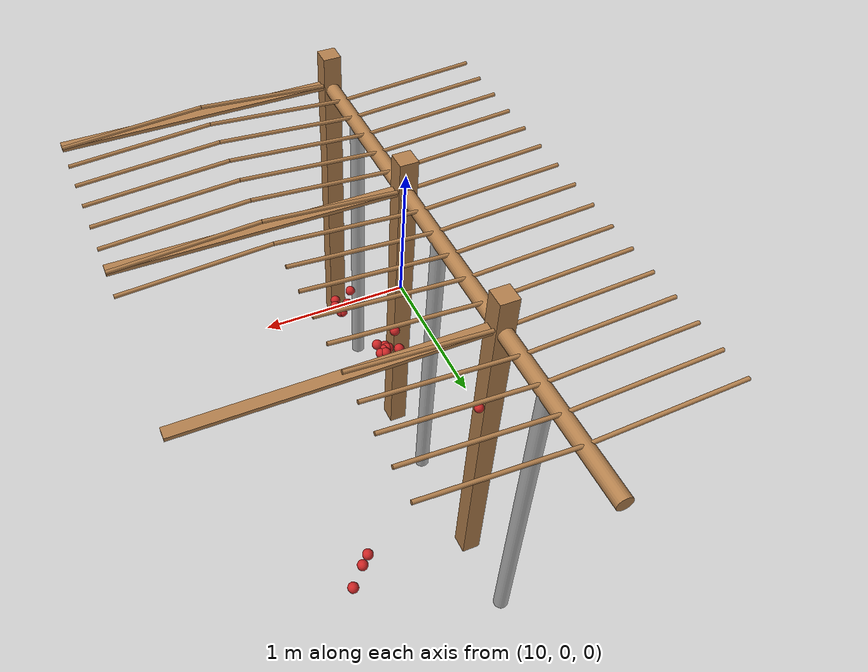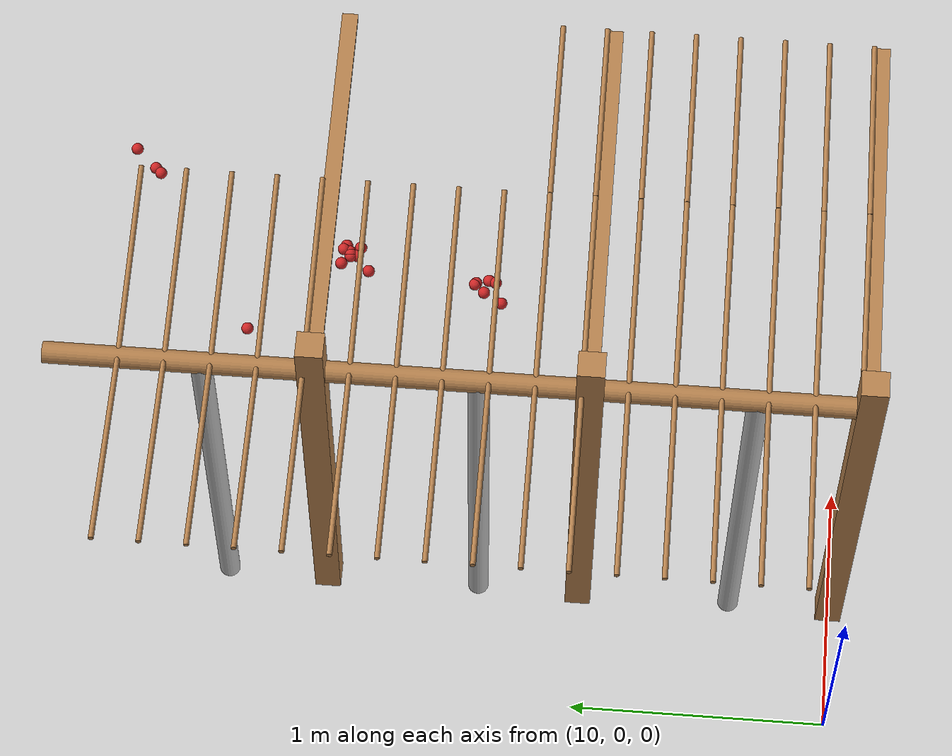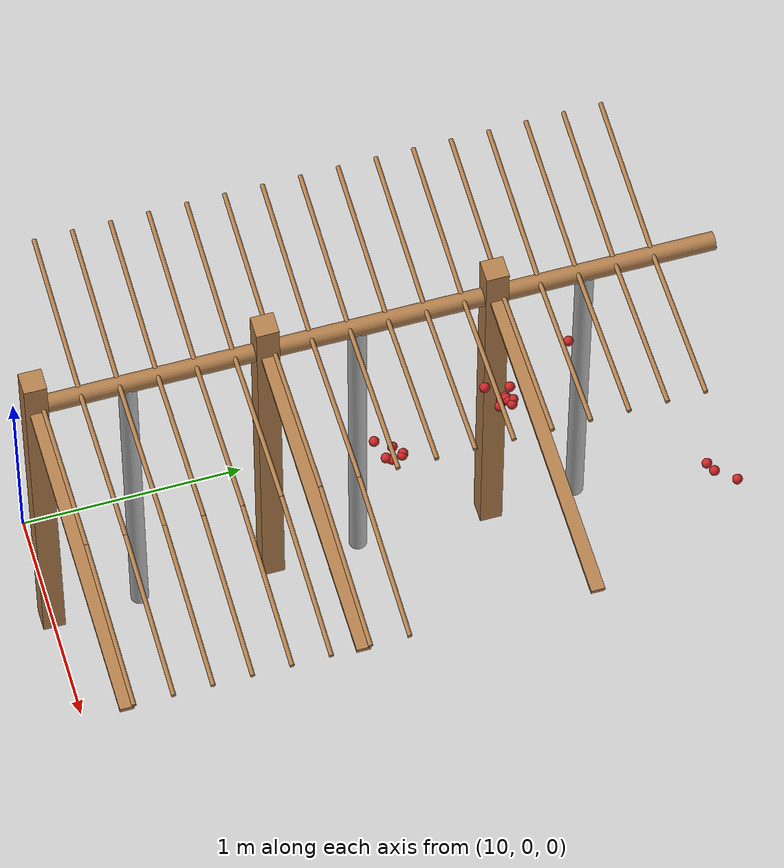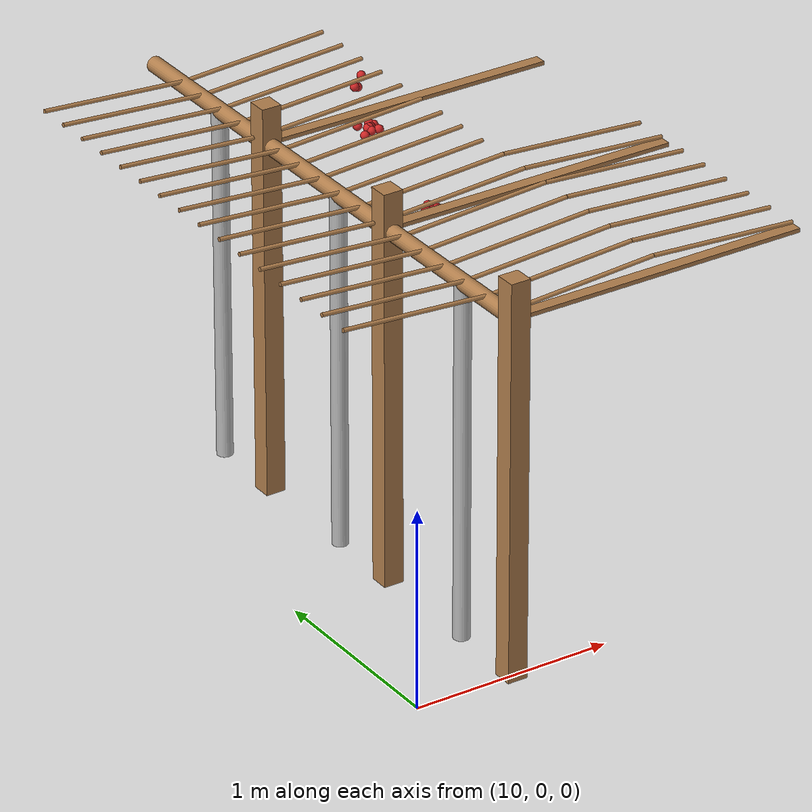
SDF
<sdf version="1.4">
 <model name="pergola">
  <include><name>post_77</name><pose>10.5 0.0 0 0 0 0</pose><uri>model://post</uri></include>
  <include><name>post_78</name><pose>10.5 1.0 0 0 0 0</pose><uri>model://post</uri></include>
  <include><name>post_79</name><pose>10.5 2.0 0 0 0 0</pose><uri>model://post</uri></include>
  <link name="beam_77">
   <pose>11.25 0.0 1.81 0 0 0</pose>
   <collision name="collision"><geometry><box><size>1.5 0.06 0.02</size></box></geometry></collision>
   <visual name="visual">
    <geometry><box><size>1.5 0.06 0.02</size></box></geometry>
    <material><script><name>Gazebo/Wood</name></script></material>
   </visual>
   <inertial>
    <mass>5</mass>
    <inertia>
     <ixx>0.0016666666666666668</ixx>
     <ixy>0.0</ixy>
     <ixz>0.0</ixz>
     <iyy>0.9390000000000001</iyy>
     <iyz>0.0</iyz>
     <izz>0.9376666666666665</izz>
    </inertia>
   </inertial>
  </link>
  <link name="beam_78">
   <pose>11.25 1.0 1.81 0 0 0</pose>
   <collision name="collision"><geometry><box><size>1.5 0.06 0.02</size></box></geometry></collision>
   <visual name="visual">
    <geometry><box><size>1.5 0.06 0.02</size></box></geometry>
    <material><script><name>Gazebo/Wood</name></script></material>
   </visual>
   <inertial>
    <mass>5</mass>
    <inertia>
     <ixx>0.0016666666666666668</ixx>
     <ixy>0.0</ixy>
     <ixz>0.0</ixz>
     <iyy>0.9390000000000001</iyy>
     <iyz>0.0</iyz>
     <izz>0.9376666666666665</izz>
    </inertia>
   </inertial>
  </link>
  <link name="beam_79">
   <pose>11.25 2.0 1.81 0 0 0</pose>
   <collision name="collision"><geometry><box><size>1.5 0.06 0.02</size></box></geometry></collision>
   <visual name="visual">
    <geometry><box><size>1.5 0.06 0.02</size></box></geometry>
    <material><script><name>Gazebo/Wood</name></script></material>
   </visual>
   <inertial>
    <mass>5</mass>
    <inertia>
     <ixx>0.0016666666666666668</ixx>
     <ixy>0.0</ixy>
     <ixz>0.0</ixz>
     <iyy>0.9390000000000001</iyy>
     <iyz>0.0</iyz>
     <izz>0.9376666666666665</izz>
    </inertia>
   </inertial>
  </link>
  <include><name>tree_70</name><pose>10.5 0.4 0 0 0 0</pose><uri>model://tree_trunk</uri></include>
  <include><name>tree_71</name><pose>10.5 1.4 0 0 0 0</pose><uri>model://tree_trunk</uri></include>
  <include><name>tree_72</name><pose>10.5 2.4 0 0 0 0</pose><uri>model://tree_trunk</uri></include>
  <link name="baseBranch_70">
   <pose>10.5 0.5 1.8 1.5707963267948966 0 0</pose>
   <collision name="collision">
    <geometry><cylinder><radius>0.04</radius><length>0.94</length></cylinder></geometry>
   </collision>
   <visual name="visual">
    <geometry><cylinder><radius>0.04</radius><length>0.94</length></cylinder></geometry>
    <material><script><name>Gazebo/WoodFloor</name></script></material>
   </visual>
   <inertial>
    <mass>10</mass>
    <inertia>
     <ixx>0.7403333333333334</ixx>
     <ixy>0.0</ixy>
     <ixz>0.0</ixz>
     <iyy>0.7403333333333334</iyy>
     <iyz>0.0</iyz>
     <izz>0.008</izz>
    </inertia>
   </inertial>
  </link>
  <link name="baseBranch_71">
   <pose>10.5 1.5 1.8 1.5707963267948966 0 0</pose>
   <collision name="collision">
    <geometry><cylinder><radius>0.04</radius><length>0.94</length></cylinder></geometry>
   </collision>
   <visual name="visual">
    <geometry><cylinder><radius>0.04</radius><length>0.94</length></cylinder></geometry>
    <material><script><name>Gazebo/WoodFloor</name></script></material>
   </visual>
   <inertial>
    <mass>10</mass>
    <inertia>
     <ixx>0.7403333333333334</ixx>
     <ixy>0.0</ixy>
     <ixz>0.0</ixz>
     <iyy>0.7403333333333334</iyy>
     <iyz>0.0</iyz>
     <izz>0.008</izz>
    </inertia>
   </inertial>
  </link>
  <link name="baseBranch_72">
   <pose>10.5 2.5 1.8 1.5707963267948966 0 0</pose>
   <collision name="collision">
    <geometry><cylinder><radius>0.04</radius><length>0.94</length></cylinder></geometry>
   </collision>
   <visual name="visual">
    <geometry><cylinder><radius>0.04</radius><length>0.94</length></cylinder></geometry>
    <material><script><name>Gazebo/WoodFloor</name></script></material>
   </visual>
   <inertial>
    <mass>10</mass>
    <inertia>
     <ixx>0.7403333333333334</ixx>
     <ixy>0.0</ixy>
     <ixz>0.0</ixz>
     <iyy>0.7403333333333334</iyy>
     <iyz>0.0</iyz>
     <izz>0.008</izz>
    </inertia>
   </inertial>
  </link>
  <link name="vine_723">
   <pose>10.125 0.19666666666666666 1.85 0 -1.5042281630190728 0</pose>
   <collision name="collision">
    <geometry><cylinder><radius>0.01</radius><length>0.7516648189186453</length></cylinder></geometry>
   </collision>
   <visual name="visual">
    <geometry><cylinder><radius>0.01</radius><length>0.7516648189186453</length></cylinder></geometry>
    <material><script><name>Gazebo/WoodFloor</name></script></material>
   </visual>
   <inertial>
    <mass>5</mass>
    <inertia>
     <ixx>0.23554166666666657</ixx>
     <ixy>0.0</ixy>
     <ixz>0.0</ixz>
     <iyy>0.23554166666666657</iyy>
     <iyz>0.0</iyz>
     <izz>0.00025</izz>
    </inertia>
   </inertial>
  </link>
  <link name="vine_725">
   <pose>10.125 0.3633333333333333 1.85 0 -1.5042281630190728 0</pose>
   <collision name="collision">
    <geometry><cylinder><radius>0.01</radius><length>0.7516648189186453</length></cylinder></geometry>
   </collision>
   <visual name="visual">
    <geometry><cylinder><radius>0.01</radius><length>0.7516648189186453</length></cylinder></geometry>
    <material><script><name>Gazebo/WoodFloor</name></script></material>
   </visual>
   <inertial>
    <mass>5</mass>
    <inertia>
     <ixx>0.23554166666666657</ixx>
     <ixy>0.0</ixy>
     <ixz>0.0</ixz>
     <iyy>0.23554166666666657</iyy>
     <iyz>0.0</iyz>
     <izz>0.00025</izz>
    </inertia>
   </inertial>
  </link>
  <link name="vine_727">
   <pose>10.125 0.53 1.85 0 -1.5042281630190728 0</pose>
   <collision name="collision">
    <geometry><cylinder><radius>0.01</radius><length>0.7516648189186453</length></cylinder></geometry>
   </collision>
   <visual name="visual">
    <geometry><cylinder><radius>0.01</radius><length>0.7516648189186453</length></cylinder></geometry>
    <material><script><name>Gazebo/WoodFloor</name></script></material>
   </visual>
   <inertial>
    <mass>5</mass>
    <inertia>
     <ixx>0.23554166666666657</ixx>
     <ixy>0.0</ixy>
     <ixz>0.0</ixz>
     <iyy>0.23554166666666657</iyy>
     <iyz>0.0</iyz>
     <izz>0.00025</izz>
    </inertia>
   </inertial>
  </link>
  <link name="vine_729">
   <pose>10.125 0.6966666666666667 1.85 0 -1.5042281630190728 0</pose>
   <collision name="collision">
    <geometry><cylinder><radius>0.01</radius><length>0.7516648189186453</length></cylinder></geometry>
   </collision>
   <visual name="visual">
    <geometry><cylinder><radius>0.01</radius><length>0.7516648189186453</length></cylinder></geometry>
    <material><script><name>Gazebo/WoodFloor</name></script></material>
   </visual>
   <inertial>
    <mass>5</mass>
    <inertia>
     <ixx>0.23554166666666657</ixx>
     <ixy>0.0</ixy>
     <ixz>0.0</ixz>
     <iyy>0.23554166666666657</iyy>
     <iyz>0.0</iyz>
     <izz>0.00025</izz>
    </inertia>
   </inertial>
  </link>
  <link name="vine_731">
   <pose>10.125 0.8633333333333333 1.85 0 -1.5042281630190728 0</pose>
   <collision name="collision">
    <geometry><cylinder><radius>0.01</radius><length>0.7516648189186453</length></cylinder></geometry>
   </collision>
   <visual name="visual">
    <geometry><cylinder><radius>0.01</radius><length>0.7516648189186453</length></cylinder></geometry>
    <material><script><name>Gazebo/WoodFloor</name></script></material>
   </visual>
   <inertial>
    <mass>5</mass>
    <inertia>
     <ixx>0.23554166666666657</ixx>
     <ixy>0.0</ixy>
     <ixz>0.0</ixz>
     <iyy>0.23554166666666657</iyy>
     <iyz>0.0</iyz>
     <izz>0.00025</izz>
    </inertia>
   </inertial>
  </link>
  <link name="vine_733">
   <pose>10.125 1.03 1.85 0 -1.5042281630190728 0</pose>
   <collision name="collision">
    <geometry><cylinder><radius>0.01</radius><length>0.7516648189186453</length></cylinder></geometry>
   </collision>
   <visual name="visual">
    <geometry><cylinder><radius>0.01</radius><length>0.7516648189186453</length></cylinder></geometry>
    <material><script><name>Gazebo/WoodFloor</name></script></material>
   </visual>
   <inertial>
    <mass>5</mass>
    <inertia>
     <ixx>0.23554166666666657</ixx>
     <ixy>0.0</ixy>
     <ixz>0.0</ixz>
     <iyy>0.23554166666666657</iyy>
     <iyz>0.0</iyz>
     <izz>0.00025</izz>
    </inertia>
   </inertial>
  </link>
  <link name="vine_735">
   <pose>10.125 1.1966666666666665 1.85 0 -1.5042281630190728 0</pose>
   <collision name="collision">
    <geometry><cylinder><radius>0.01</radius><length>0.7516648189186453</length></cylinder></geometry>
   </collision>
   <visual name="visual">
    <geometry><cylinder><radius>0.01</radius><length>0.7516648189186453</length></cylinder></geometry>
    <material><script><name>Gazebo/WoodFloor</name></script></material>
   </visual>
   <inertial>
    <mass>5</mass>
    <inertia>
     <ixx>0.23554166666666657</ixx>
     <ixy>0.0</ixy>
     <ixz>0.0</ixz>
     <iyy>0.23554166666666657</iyy>
     <iyz>0.0</iyz>
     <izz>0.00025</izz>
    </inertia>
   </inertial>
  </link>
  <link name="vine_737">
   <pose>10.125 1.3633333333333333 1.85 0 -1.5042281630190728 0</pose>
   <collision name="collision">
    <geometry><cylinder><radius>0.01</radius><length>0.7516648189186453</length></cylinder></geometry>
   </collision>
   <visual name="visual">
    <geometry><cylinder><radius>0.01</radius><length>0.7516648189186453</length></cylinder></geometry>
    <material><script><name>Gazebo/WoodFloor</name></script></material>
   </visual>
   <inertial>
    <mass>5</mass>
    <inertia>
     <ixx>0.23554166666666657</ixx>
     <ixy>0.0</ixy>
     <ixz>0.0</ixz>
     <iyy>0.23554166666666657</iyy>
     <iyz>0.0</iyz>
     <izz>0.00025</izz>
    </inertia>
   </inertial>
  </link>
  <link name="vine_739">
   <pose>10.125 1.53 1.85 0 -1.5042281630190728 0</pose>
   <collision name="collision">
    <geometry><cylinder><radius>0.01</radius><length>0.7516648189186453</length></cylinder></geometry>
   </collision>
   <visual name="visual">
    <geometry><cylinder><radius>0.01</radius><length>0.7516648189186453</length></cylinder></geometry>
    <material><script><name>Gazebo/WoodFloor</name></script></material>
   </visual>
   <inertial>
    <mass>5</mass>
    <inertia>
     <ixx>0.23554166666666657</ixx>
     <ixy>0.0</ixy>
     <ixz>0.0</ixz>
     <iyy>0.23554166666666657</iyy>
     <iyz>0.0</iyz>
     <izz>0.00025</izz>
    </inertia>
   </inertial>
  </link>
  <link name="vine_741">
   <pose>10.125 1.6966666666666665 1.85 0 -1.5042281630190728 0</pose>
   <collision name="collision">
    <geometry><cylinder><radius>0.01</radius><length>0.7516648189186453</length></cylinder></geometry>
   </collision>
   <visual name="visual">
    <geometry><cylinder><radius>0.01</radius><length>0.7516648189186453</length></cylinder></geometry>
    <material><script><name>Gazebo/WoodFloor</name></script></material>
   </visual>
   <inertial>
    <mass>5</mass>
    <inertia>
     <ixx>0.23554166666666657</ixx>
     <ixy>0.0</ixy>
     <ixz>0.0</ixz>
     <iyy>0.23554166666666657</iyy>
     <iyz>0.0</iyz>
     <izz>0.00025</izz>
    </inertia>
   </inertial>
  </link>
  <link name="vine_743">
   <pose>10.125 1.8633333333333333 1.85 0 -1.5042281630190728 0</pose>
   <collision name="collision">
    <geometry><cylinder><radius>0.01</radius><length>0.7516648189186453</length></cylinder></geometry>
   </collision>
   <visual name="visual">
    <geometry><cylinder><radius>0.01</radius><length>0.7516648189186453</length></cylinder></geometry>
    <material><script><name>Gazebo/WoodFloor</name></script></material>
   </visual>
   <inertial>
    <mass>5</mass>
    <inertia>
     <ixx>0.23554166666666657</ixx>
     <ixy>0.0</ixy>
     <ixz>0.0</ixz>
     <iyy>0.23554166666666657</iyy>
     <iyz>0.0</iyz>
     <izz>0.00025</izz>
    </inertia>
   </inertial>
  </link>
  <link name="vine_745">
   <pose>10.125 2.03 1.85 0 -1.5042281630190728 0</pose>
   <collision name="collision">
    <geometry><cylinder><radius>0.01</radius><length>0.7516648189186453</length></cylinder></geometry>
   </collision>
   <visual name="visual">
    <geometry><cylinder><radius>0.01</radius><length>0.7516648189186453</length></cylinder></geometry>
    <material><script><name>Gazebo/WoodFloor</name></script></material>
   </visual>
   <inertial>
    <mass>5</mass>
    <inertia>
     <ixx>0.23554166666666657</ixx>
     <ixy>0.0</ixy>
     <ixz>0.0</ixz>
     <iyy>0.23554166666666657</iyy>
     <iyz>0.0</iyz>
     <izz>0.00025</izz>
    </inertia>
   </inertial>
  </link>
  <link name="vine_747">
   <pose>10.125 2.1966666666666663 1.85 0 -1.5042281630190728 0</pose>
   <collision name="collision">
    <geometry><cylinder><radius>0.01</radius><length>0.7516648189186453</length></cylinder></geometry>
   </collision>
   <visual name="visual">
    <geometry><cylinder><radius>0.01</radius><length>0.7516648189186453</length></cylinder></geometry>
    <material><script><name>Gazebo/WoodFloor</name></script></material>
   </visual>
   <inertial>
    <mass>5</mass>
    <inertia>
     <ixx>0.23554166666666657</ixx>
     <ixy>0.0</ixy>
     <ixz>0.0</ixz>
     <iyy>0.23554166666666657</iyy>
     <iyz>0.0</iyz>
     <izz>0.00025</izz>
    </inertia>
   </inertial>
  </link>
  <link name="vine_749">
   <pose>10.125 2.363333333333333 1.85 0 -1.5042281630190728 0</pose>
   <collision name="collision">
    <geometry><cylinder><radius>0.01</radius><length>0.7516648189186453</length></cylinder></geometry>
   </collision>
   <visual name="visual">
    <geometry><cylinder><radius>0.01</radius><length>0.7516648189186453</length></cylinder></geometry>
    <material><script><name>Gazebo/WoodFloor</name></script></material>
   </visual>
   <inertial>
    <mass>5</mass>
    <inertia>
     <ixx>0.23554166666666657</ixx>
     <ixy>0.0</ixy>
     <ixz>0.0</ixz>
     <iyy>0.23554166666666657</iyy>
     <iyz>0.0</iyz>
     <izz>0.00025</izz>
    </inertia>
   </inertial>
  </link>
  <link name="vine_751">
   <pose>10.125 2.53 1.85 0 -1.5042281630190728 0</pose>
   <collision name="collision">
    <geometry><cylinder><radius>0.01</radius><length>0.7516648189186453</length></cylinder></geometry>
   </collision>
   <visual name="visual">
    <geometry><cylinder><radius>0.01</radius><length>0.7516648189186453</length></cylinder></geometry>
    <material><script><name>Gazebo/WoodFloor</name></script></material>
   </visual>
   <inertial>
    <mass>5</mass>
    <inertia>
     <ixx>0.23554166666666657</ixx>
     <ixy>0.0</ixy>
     <ixz>0.0</ixz>
     <iyy>0.23554166666666657</iyy>
     <iyz>0.0</iyz>
     <izz>0.00025</izz>
    </inertia>
   </inertial>
  </link>
  <link name="vine_753">
   <pose>10.125 2.6966666666666663 1.85 0 -1.5042281630190728 0</pose>
   <collision name="collision">
    <geometry><cylinder><radius>0.01</radius><length>0.7516648189186453</length></cylinder></geometry>
   </collision>
   <visual name="visual">
    <geometry><cylinder><radius>0.01</radius><length>0.7516648189186453</length></cylinder></geometry>
    <material><script><name>Gazebo/WoodFloor</name></script></material>
   </visual>
   <inertial>
    <mass>5</mass>
    <inertia>
     <ixx>0.23554166666666657</ixx>
     <ixy>0.0</ixy>
     <ixz>0.0</ixz>
     <iyy>0.23554166666666657</iyy>
     <iyz>0.0</iyz>
     <izz>0.00025</izz>
    </inertia>
   </inertial>
  </link>
  <link name="vine_840">
   <pose>10.875 0.03 1.85 0 1.5042281630190728 0</pose>
   <collision name="collision">
    <geometry><cylinder><radius>0.01</radius><length>0.7516648189186453</length></cylinder></geometry>
   </collision>
   <visual name="visual">
    <geometry><cylinder><radius>0.01</radius><length>0.7516648189186453</length></cylinder></geometry>
    <material><script><name>Gazebo/WoodFloor</name></script></material>
   </visual>
   <inertial>
    <mass>5</mass>
    <inertia>
     <ixx>0.23554166666666657</ixx>
     <ixy>0.0</ixy>
     <ixz>0.0</ixz>
     <iyy>0.23554166666666657</iyy>
     <iyz>0.0</iyz>
     <izz>0.00025</izz>
    </inertia>
   </inertial>
  </link>
  <link name="vine_841">
   <pose>11.625 0.03 1.85 0 -1.5042281630190728 0</pose>
   <collision name="collision">
    <geometry><cylinder><radius>0.01</radius><length>0.7516648189186453</length></cylinder></geometry>
   </collision>
   <visual name="visual">
    <geometry><cylinder><radius>0.01</radius><length>0.7516648189186453</length></cylinder></geometry>
    <material><script><name>Gazebo/WoodFloor</name></script></material>
   </visual>
   <inertial>
    <mass>5</mass>
    <inertia>
     <ixx>0.23554166666666657</ixx>
     <ixy>0.0</ixy>
     <ixz>0.0</ixz>
     <iyy>0.23554166666666657</iyy>
     <iyz>0.0</iyz>
     <izz>0.00025</izz>
    </inertia>
   </inertial>
  </link>
  <link name="vine_842">
   <pose>10.875 0.19666666666666666 1.85 0 1.5042281630190728 0</pose>
   <collision name="collision">
    <geometry><cylinder><radius>0.01</radius><length>0.7516648189186453</length></cylinder></geometry>
   </collision>
   <visual name="visual">
    <geometry><cylinder><radius>0.01</radius><length>0.7516648189186453</length></cylinder></geometry>
    <material><script><name>Gazebo/WoodFloor</name></script></material>
   </visual>
   <inertial>
    <mass>5</mass>
    <inertia>
     <ixx>0.23554166666666657</ixx>
     <ixy>0.0</ixy>
     <ixz>0.0</ixz>
     <iyy>0.23554166666666657</iyy>
     <iyz>0.0</iyz>
     <izz>0.00025</izz>
    </inertia>
   </inertial>
  </link>
  <link name="vine_843">
   <pose>11.625 0.19666666666666666 1.85 0 -1.5042281630190728 0</pose>
   <collision name="collision">
    <geometry><cylinder><radius>0.01</radius><length>0.7516648189186453</length></cylinder></geometry>
   </collision>
   <visual name="visual">
    <geometry><cylinder><radius>0.01</radius><length>0.7516648189186453</length></cylinder></geometry>
    <material><script><name>Gazebo/WoodFloor</name></script></material>
   </visual>
   <inertial>
    <mass>5</mass>
    <inertia>
     <ixx>0.23554166666666657</ixx>
     <ixy>0.0</ixy>
     <ixz>0.0</ixz>
     <iyy>0.23554166666666657</iyy>
     <iyz>0.0</iyz>
     <izz>0.00025</izz>
    </inertia>
   </inertial>
  </link>
  <link name="vine_844">
   <pose>10.875 0.3633333333333333 1.85 0 1.5042281630190728 0</pose>
   <collision name="collision">
    <geometry><cylinder><radius>0.01</radius><length>0.7516648189186453</length></cylinder></geometry>
   </collision>
   <visual name="visual">
    <geometry><cylinder><radius>0.01</radius><length>0.7516648189186453</length></cylinder></geometry>
    <material><script><name>Gazebo/WoodFloor</name></script></material>
   </visual>
   <inertial>
    <mass>5</mass>
    <inertia>
     <ixx>0.23554166666666657</ixx>
     <ixy>0.0</ixy>
     <ixz>0.0</ixz>
     <iyy>0.23554166666666657</iyy>
     <iyz>0.0</iyz>
     <izz>0.00025</izz>
    </inertia>
   </inertial>
  </link>
  <link name="vine_845">
   <pose>11.625 0.3633333333333333 1.85 0 -1.5042281630190728 0</pose>
   <collision name="collision">
    <geometry><cylinder><radius>0.01</radius><length>0.7516648189186453</length></cylinder></geometry>
   </collision>
   <visual name="visual">
    <geometry><cylinder><radius>0.01</radius><length>0.7516648189186453</length></cylinder></geometry>
    <material><script><name>Gazebo/WoodFloor</name></script></material>
   </visual>
   <inertial>
    <mass>5</mass>
    <inertia>
     <ixx>0.23554166666666657</ixx>
     <ixy>0.0</ixy>
     <ixz>0.0</ixz>
     <iyy>0.23554166666666657</iyy>
     <iyz>0.0</iyz>
     <izz>0.00025</izz>
    </inertia>
   </inertial>
  </link>
  <link name="vine_846">
   <pose>10.875 0.53 1.85 0 1.5042281630190728 0</pose>
   <collision name="collision">
    <geometry><cylinder><radius>0.01</radius><length>0.7516648189186453</length></cylinder></geometry>
   </collision>
   <visual name="visual">
    <geometry><cylinder><radius>0.01</radius><length>0.7516648189186453</length></cylinder></geometry>
    <material><script><name>Gazebo/WoodFloor</name></script></material>
   </visual>
   <inertial>
    <mass>5</mass>
    <inertia>
     <ixx>0.23554166666666657</ixx>
     <ixy>0.0</ixy>
     <ixz>0.0</ixz>
     <iyy>0.23554166666666657</iyy>
     <iyz>0.0</iyz>
     <izz>0.00025</izz>
    </inertia>
   </inertial>
  </link>
  <link name="vine_847">
   <pose>11.625 0.53 1.85 0 -1.5042281630190728 0</pose>
   <collision name="collision">
    <geometry><cylinder><radius>0.01</radius><length>0.7516648189186453</length></cylinder></geometry>
   </collision>
   <visual name="visual">
    <geometry><cylinder><radius>0.01</radius><length>0.7516648189186453</length></cylinder></geometry>
    <material><script><name>Gazebo/WoodFloor</name></script></material>
   </visual>
   <inertial>
    <mass>5</mass>
    <inertia>
     <ixx>0.23554166666666657</ixx>
     <ixy>0.0</ixy>
     <ixz>0.0</ixz>
     <iyy>0.23554166666666657</iyy>
     <iyz>0.0</iyz>
     <izz>0.00025</izz>
    </inertia>
   </inertial>
  </link>
  <link name="vine_848">
   <pose>10.875 0.6966666666666667 1.85 0 1.5042281630190728 0</pose>
   <collision name="collision">
    <geometry><cylinder><radius>0.01</radius><length>0.7516648189186453</length></cylinder></geometry>
   </collision>
   <visual name="visual">
    <geometry><cylinder><radius>0.01</radius><length>0.7516648189186453</length></cylinder></geometry>
    <material><script><name>Gazebo/WoodFloor</name></script></material>
   </visual>
   <inertial>
    <mass>5</mass>
    <inertia>
     <ixx>0.23554166666666657</ixx>
     <ixy>0.0</ixy>
     <ixz>0.0</ixz>
     <iyy>0.23554166666666657</iyy>
     <iyz>0.0</iyz>
     <izz>0.00025</izz>
    </inertia>
   </inertial>
  </link>
  <link name="vine_849">
   <pose>11.625 0.6966666666666667 1.85 0 -1.5042281630190728 0</pose>
   <collision name="collision">
    <geometry><cylinder><radius>0.01</radius><length>0.7516648189186453</length></cylinder></geometry>
   </collision>
   <visual name="visual">
    <geometry><cylinder><radius>0.01</radius><length>0.7516648189186453</length></cylinder></geometry>
    <material><script><name>Gazebo/WoodFloor</name></script></material>
   </visual>
   <inertial>
    <mass>5</mass>
    <inertia>
     <ixx>0.23554166666666657</ixx>
     <ixy>0.0</ixy>
     <ixz>0.0</ixz>
     <iyy>0.23554166666666657</iyy>
     <iyz>0.0</iyz>
     <izz>0.00025</izz>
    </inertia>
   </inertial>
  </link>
  <link name="vine_850">
   <pose>10.875 0.8633333333333333 1.85 0 1.5042281630190728 0</pose>
   <collision name="collision">
    <geometry><cylinder><radius>0.01</radius><length>0.7516648189186453</length></cylinder></geometry>
   </collision>
   <visual name="visual">
    <geometry><cylinder><radius>0.01</radius><length>0.7516648189186453</length></cylinder></geometry>
    <material><script><name>Gazebo/WoodFloor</name></script></material>
   </visual>
   <inertial>
    <mass>5</mass>
    <inertia>
     <ixx>0.23554166666666657</ixx>
     <ixy>0.0</ixy>
     <ixz>0.0</ixz>
     <iyy>0.23554166666666657</iyy>
     <iyz>0.0</iyz>
     <izz>0.00025</izz>
    </inertia>
   </inertial>
  </link>
  <link name="vine_851">
   <pose>11.625 0.8633333333333333 1.85 0 -1.5042281630190728 0</pose>
   <collision name="collision">
    <geometry><cylinder><radius>0.01</radius><length>0.7516648189186453</length></cylinder></geometry>
   </collision>
   <visual name="visual">
    <geometry><cylinder><radius>0.01</radius><length>0.7516648189186453</length></cylinder></geometry>
    <material><script><name>Gazebo/WoodFloor</name></script></material>
   </visual>
   <inertial>
    <mass>5</mass>
    <inertia>
     <ixx>0.23554166666666657</ixx>
     <ixy>0.0</ixy>
     <ixz>0.0</ixz>
     <iyy>0.23554166666666657</iyy>
     <iyz>0.0</iyz>
     <izz>0.00025</izz>
    </inertia>
   </inertial>
  </link>
  <link name="vine_852">
   <pose>10.875 1.03 1.85 0 1.5042281630190728 0</pose>
   <collision name="collision">
    <geometry><cylinder><radius>0.01</radius><length>0.7516648189186453</length></cylinder></geometry>
   </collision>
   <visual name="visual">
    <geometry><cylinder><radius>0.01</radius><length>0.7516648189186453</length></cylinder></geometry>
    <material><script><name>Gazebo/WoodFloor</name></script></material>
   </visual>
   <inertial>
    <mass>5</mass>
    <inertia>
     <ixx>0.23554166666666657</ixx>
     <ixy>0.0</ixy>
     <ixz>0.0</ixz>
     <iyy>0.23554166666666657</iyy>
     <iyz>0.0</iyz>
     <izz>0.00025</izz>
    </inertia>
   </inertial>
  </link>
  <link name="vine_853">
   <pose>11.625 1.03 1.85 0 -1.5042281630190728 0</pose>
   <collision name="collision">
    <geometry><cylinder><radius>0.01</radius><length>0.7516648189186453</length></cylinder></geometry>
   </collision>
   <visual name="visual">
    <geometry><cylinder><radius>0.01</radius><length>0.7516648189186453</length></cylinder></geometry>
    <material><script><name>Gazebo/WoodFloor</name></script></material>
   </visual>
   <inertial>
    <mass>5</mass>
    <inertia>
     <ixx>0.23554166666666657</ixx>
     <ixy>0.0</ixy>
     <ixz>0.0</ixz>
     <iyy>0.23554166666666657</iyy>
     <iyz>0.0</iyz>
     <izz>0.00025</izz>
    </inertia>
   </inertial>
  </link>
  <link name="vine_854">
   <pose>10.875 1.1966666666666665 1.85 0 1.5042281630190728 0</pose>
   <collision name="collision">
    <geometry><cylinder><radius>0.01</radius><length>0.7516648189186453</length></cylinder></geometry>
   </collision>
   <visual name="visual">
    <geometry><cylinder><radius>0.01</radius><length>0.7516648189186453</length></cylinder></geometry>
    <material><script><name>Gazebo/WoodFloor</name></script></material>
   </visual>
   <inertial>
    <mass>5</mass>
    <inertia>
     <ixx>0.23554166666666657</ixx>
     <ixy>0.0</ixy>
     <ixz>0.0</ixz>
     <iyy>0.23554166666666657</iyy>
     <iyz>0.0</iyz>
     <izz>0.00025</izz>
    </inertia>
   </inertial>
  </link>
  <link name="vine_855">
   <pose>11.625 1.1966666666666665 1.85 0 -1.5042281630190728 0</pose>
   <collision name="collision">
    <geometry><cylinder><radius>0.01</radius><length>0.7516648189186453</length></cylinder></geometry>
   </collision>
   <visual name="visual">
    <geometry><cylinder><radius>0.01</radius><length>0.7516648189186453</length></cylinder></geometry>
    <material><script><name>Gazebo/WoodFloor</name></script></material>
   </visual>
   <inertial>
    <mass>5</mass>
    <inertia>
     <ixx>0.23554166666666657</ixx>
     <ixy>0.0</ixy>
     <ixz>0.0</ixz>
     <iyy>0.23554166666666657</iyy>
     <iyz>0.0</iyz>
     <izz>0.00025</izz>
    </inertia>
   </inertial>
  </link>
  <link name="vine_856">
   <pose>10.875 1.3633333333333333 1.85 0 1.5042281630190728 0</pose>
   <collision name="collision">
    <geometry><cylinder><radius>0.01</radius><length>0.7516648189186453</length></cylinder></geometry>
   </collision>
   <visual name="visual">
    <geometry><cylinder><radius>0.01</radius><length>0.7516648189186453</length></cylinder></geometry>
    <material><script><name>Gazebo/WoodFloor</name></script></material>
   </visual>
   <inertial>
    <mass>5</mass>
    <inertia>
     <ixx>0.23554166666666657</ixx>
     <ixy>0.0</ixy>
     <ixz>0.0</ixz>
     <iyy>0.23554166666666657</iyy>
     <iyz>0.0</iyz>
     <izz>0.00025</izz>
    </inertia>
   </inertial>
  </link>
  <link name="vine_858">
   <pose>10.875 1.53 1.85 0 1.5042281630190728 0</pose>
   <collision name="collision">
    <geometry><cylinder><radius>0.01</radius><length>0.7516648189186453</length></cylinder></geometry>
   </collision>
   <visual name="visual">
    <geometry><cylinder><radius>0.01</radius><length>0.7516648189186453</length></cylinder></geometry>
    <material><script><name>Gazebo/WoodFloor</name></script></material>
   </visual>
   <inertial>
    <mass>5</mass>
    <inertia>
     <ixx>0.23554166666666657</ixx>
     <ixy>0.0</ixy>
     <ixz>0.0</ixz>
     <iyy>0.23554166666666657</iyy>
     <iyz>0.0</iyz>
     <izz>0.00025</izz>
    </inertia>
   </inertial>
  </link>
  <link name="vine_860">
   <pose>10.875 1.6966666666666665 1.85 0 1.5042281630190728 0</pose>
   <collision name="collision">
    <geometry><cylinder><radius>0.01</radius><length>0.7516648189186453</length></cylinder></geometry>
   </collision>
   <visual name="visual">
    <geometry><cylinder><radius>0.01</radius><length>0.7516648189186453</length></cylinder></geometry>
    <material><script><name>Gazebo/WoodFloor</name></script></material>
   </visual>
   <inertial>
    <mass>5</mass>
    <inertia>
     <ixx>0.23554166666666657</ixx>
     <ixy>0.0</ixy>
     <ixz>0.0</ixz>
     <iyy>0.23554166666666657</iyy>
     <iyz>0.0</iyz>
     <izz>0.00025</izz>
    </inertia>
   </inertial>
  </link>
  <link name="vine_862">
   <pose>10.875 1.8633333333333333 1.85 0 1.5042281630190728 0</pose>
   <collision name="collision">
    <geometry><cylinder><radius>0.01</radius><length>0.7516648189186453</length></cylinder></geometry>
   </collision>
   <visual name="visual">
    <geometry><cylinder><radius>0.01</radius><length>0.7516648189186453</length></cylinder></geometry>
    <material><script><name>Gazebo/WoodFloor</name></script></material>
   </visual>
   <inertial>
    <mass>5</mass>
    <inertia>
     <ixx>0.23554166666666657</ixx>
     <ixy>0.0</ixy>
     <ixz>0.0</ixz>
     <iyy>0.23554166666666657</iyy>
     <iyz>0.0</iyz>
     <izz>0.00025</izz>
    </inertia>
   </inertial>
  </link>
  <link name="vine_864">
   <pose>10.875 2.03 1.85 0 1.5042281630190728 0</pose>
   <collision name="collision">
    <geometry><cylinder><radius>0.01</radius><length>0.7516648189186453</length></cylinder></geometry>
   </collision>
   <visual name="visual">
    <geometry><cylinder><radius>0.01</radius><length>0.7516648189186453</length></cylinder></geometry>
    <material><script><name>Gazebo/WoodFloor</name></script></material>
   </visual>
   <inertial>
    <mass>5</mass>
    <inertia>
     <ixx>0.23554166666666657</ixx>
     <ixy>0.0</ixy>
     <ixz>0.0</ixz>
     <iyy>0.23554166666666657</iyy>
     <iyz>0.0</iyz>
     <izz>0.00025</izz>
    </inertia>
   </inertial>
  </link>
  <link name="vine_866">
   <pose>10.875 2.1966666666666663 1.85 0 1.5042281630190728 0</pose>
   <collision name="collision">
    <geometry><cylinder><radius>0.01</radius><length>0.7516648189186453</length></cylinder></geometry>
   </collision>
   <visual name="visual">
    <geometry><cylinder><radius>0.01</radius><length>0.7516648189186453</length></cylinder></geometry>
    <material><script><name>Gazebo/WoodFloor</name></script></material>
   </visual>
   <inertial>
    <mass>5</mass>
    <inertia>
     <ixx>0.23554166666666657</ixx>
     <ixy>0.0</ixy>
     <ixz>0.0</ixz>
     <iyy>0.23554166666666657</iyy>
     <iyz>0.0</iyz>
     <izz>0.00025</izz>
    </inertia>
   </inertial>
  </link>
  <link name="vine_868">
   <pose>10.875 2.363333333333333 1.85 0 1.5042281630190728 0</pose>
   <collision name="collision">
    <geometry><cylinder><radius>0.01</radius><length>0.7516648189186453</length></cylinder></geometry>
   </collision>
   <visual name="visual">
    <geometry><cylinder><radius>0.01</radius><length>0.7516648189186453</length></cylinder></geometry>
    <material><script><name>Gazebo/WoodFloor</name></script></material>
   </visual>
   <inertial>
    <mass>5</mass>
    <inertia>
     <ixx>0.23554166666666657</ixx>
     <ixy>0.0</ixy>
     <ixz>0.0</ixz>
     <iyy>0.23554166666666657</iyy>
     <iyz>0.0</iyz>
     <izz>0.00025</izz>
    </inertia>
   </inertial>
  </link>
  <link name="vine_870">
   <pose>10.875 2.53 1.85 0 1.5042281630190728 0</pose>
   <collision name="collision">
    <geometry><cylinder><radius>0.01</radius><length>0.7516648189186453</length></cylinder></geometry>
   </collision>
   <visual name="visual">
    <geometry><cylinder><radius>0.01</radius><length>0.7516648189186453</length></cylinder></geometry>
    <material><script><name>Gazebo/WoodFloor</name></script></material>
   </visual>
   <inertial>
    <mass>5</mass>
    <inertia>
     <ixx>0.23554166666666657</ixx>
     <ixy>0.0</ixy>
     <ixz>0.0</ixz>
     <iyy>0.23554166666666657</iyy>
     <iyz>0.0</iyz>
     <izz>0.00025</izz>
    </inertia>
   </inertial>
  </link>
  <link name="vine_872">
   <pose>10.875 2.6966666666666663 1.85 0 1.5042281630190728 0</pose>
   <collision name="collision">
    <geometry><cylinder><radius>0.01</radius><length>0.7516648189186453</length></cylinder></geometry>
   </collision>
   <visual name="visual">
    <geometry><cylinder><radius>0.01</radius><length>0.7516648189186453</length></cylinder></geometry>
    <material><script><name>Gazebo/WoodFloor</name></script></material>
   </visual>
   <inertial>
    <mass>5</mass>
    <inertia>
     <ixx>0.23554166666666657</ixx>
     <ixy>0.0</ixy>
     <ixz>0.0</ixz>
     <iyy>0.23554166666666657</iyy>
     <iyz>0.0</iyz>
     <izz>0.00025</izz>
    </inertia>
   </inertial>
  </link>
  <link name="fruit_20">
   <pose>10.725710251198112 2.2629280696517813 1.6568114445738538 0 0 0</pose>
   <collision name="fruit_collision_20"><geometry><sphere><radius>0.022</radius></sphere></geometry></collision>
   <visual name="visual">
    <geometry><sphere><radius>0.022</radius></sphere></geometry>
    <material><script><name>Gazebo/Red</name></script></material>
   </visual>
   <inertial>
    <mass>0.05</mass>
    <inertia>
     <ixx>9.679999999999999e-06</ixx>
     <ixy>0.0</ixy>
     <ixz>0.0</ixz>
     <iyy>9.679999999999999e-06</iyy>
     <iyz>0.0</iyz>
     <izz>9.679999999999999e-06</izz>
    </inertia>
   </inertial>
   <sensor name="fruit_contact_20" type="contact">
    <contact><collision>fruit_collision_20</collision></contact>
   </sensor>
  </link>
  <link name="fruit_45">
   <pose>11.405429354282504 2.6660370813423677 1.561268238952504 0 0 0</pose>
   <collision name="fruit_collision_45"><geometry><sphere><radius>0.022</radius></sphere></geometry></collision>
   <visual name="visual">
    <geometry><sphere><radius>0.022</radius></sphere></geometry>
    <material><script><name>Gazebo/Red</name></script></material>
   </visual>
   <inertial>
    <mass>0.05</mass>
    <inertia>
     <ixx>9.679999999999999e-06</ixx>
     <ixy>0.0</ixy>
     <ixz>0.0</ixz>
     <iyy>9.679999999999999e-06</iyy>
     <iyz>0.0</iyz>
     <izz>9.679999999999999e-06</izz>
    </inertia>
   </inertial>
   <sensor name="fruit_contact_45" type="contact">
    <contact><collision>fruit_collision_45</collision></contact>
   </sensor>
  </link>
  <link name="fruit_52">
   <pose>10.935143621942395 1.3503423389369829 1.5898927616750127 0 0 0</pose>
   <collision name="fruit_collision_52"><geometry><sphere><radius>0.022</radius></sphere></geometry></collision>
   <visual name="visual">
    <geometry><sphere><radius>0.022</radius></sphere></geometry>
    <material><script><name>Gazebo/Red</name></script></material>
   </visual>
   <inertial>
    <mass>0.05</mass>
    <inertia>
     <ixx>9.679999999999999e-06</ixx>
     <ixy>0.0</ixy>
     <ixz>0.0</ixz>
     <iyy>9.679999999999999e-06</iyy>
     <iyz>0.0</iyz>
     <izz>9.679999999999999e-06</izz>
    </inertia>
   </inertial>
   <sensor name="fruit_contact_52" type="contact">
    <contact><collision>fruit_collision_52</collision></contact>
   </sensor>
  </link>
  <link name="fruit_60">
   <pose>10.924717623664812 1.8337654174423452 1.7895222252889003 0 0 0</pose>
   <collision name="fruit_collision_60"><geometry><sphere><radius>0.022</radius></sphere></geometry></collision>
   <visual name="visual">
    <geometry><sphere><radius>0.022</radius></sphere></geometry>
    <material><script><name>Gazebo/Red</name></script></material>
   </visual>
   <inertial>
    <mass>0.05</mass>
    <inertia>
     <ixx>9.679999999999999e-06</ixx>
     <ixy>0.0</ixy>
     <ixz>0.0</ixz>
     <iyy>9.679999999999999e-06</iyy>
     <iyz>0.0</iyz>
     <izz>9.679999999999999e-06</izz>
    </inertia>
   </inertial>
   <sensor name="fruit_contact_60" type="contact">
    <contact><collision>fruit_collision_60</collision></contact>
   </sensor>
  </link>
  <link name="fruit_116">
   <pose>10.99338863780988 1.8852229324062226 1.7733037880635234 0 0 0</pose>
   <collision name="fruit_collision_116"><geometry><sphere><radius>0.022</radius></sphere></geometry></collision>
   <visual name="visual">
    <geometry><sphere><radius>0.022</radius></sphere></geometry>
    <material><script><name>Gazebo/Red</name></script></material>
   </visual>
   <inertial>
    <mass>0.05</mass>
    <inertia>
     <ixx>9.679999999999999e-06</ixx>
     <ixy>0.0</ixy>
     <ixz>0.0</ixz>
     <iyy>9.679999999999999e-06</iyy>
     <iyz>0.0</iyz>
     <izz>9.679999999999999e-06</izz>
    </inertia>
   </inertial>
   <sensor name="fruit_contact_116" type="contact">
    <contact><collision>fruit_collision_116</collision></contact>
   </sensor>
  </link>
  <link name="fruit_197">
   <pose>11.004646198857868 1.9096341966881871 1.7812421863068688 0 0 0</pose>
   <collision name="fruit_collision_197"><geometry><sphere><radius>0.022</radius></sphere></geometry></collision>
   <visual name="visual">
    <geometry><sphere><radius>0.022</radius></sphere></geometry>
    <material><script><name>Gazebo/Red</name></script></material>
   </visual>
   <inertial>
    <mass>0.05</mass>
    <inertia>
     <ixx>9.679999999999999e-06</ixx>
     <ixy>0.0</ixy>
     <ixz>0.0</ixz>
     <iyy>9.679999999999999e-06</iyy>
     <iyz>0.0</iyz>
     <izz>9.679999999999999e-06</izz>
    </inertia>
   </inertial>
   <sensor name="fruit_contact_197" type="contact">
    <contact><collision>fruit_collision_197</collision></contact>
   </sensor>
  </link>
  <link name="fruit_206">
   <pose>11.437243668173092 2.6901699510497763 1.5410877130220901 0 0 0</pose>
   <collision name="fruit_collision_206"><geometry><sphere><radius>0.022</radius></sphere></geometry></collision>
   <visual name="visual">
    <geometry><sphere><radius>0.022</radius></sphere></geometry>
    <material><script><name>Gazebo/Red</name></script></material>
   </visual>
   <inertial>
    <mass>0.05</mass>
    <inertia>
     <ixx>9.679999999999999e-06</ixx>
     <ixy>0.0</ixy>
     <ixz>0.0</ixz>
     <iyy>9.679999999999999e-06</iyy>
     <iyz>0.0</iyz>
     <izz>9.679999999999999e-06</izz>
    </inertia>
   </inertial>
   <sensor name="fruit_contact_206" type="contact">
    <contact><collision>fruit_collision_206</collision></contact>
   </sensor>
  </link>
  <link name="fruit_218">
   <pose>11.010816979799671 1.9321219668326448 1.7864119924244242 0 0 0</pose>
   <collision name="fruit_collision_218"><geometry><sphere><radius>0.022</radius></sphere></geometry></collision>
   <visual name="visual">
    <geometry><sphere><radius>0.022</radius></sphere></geometry>
    <material><script><name>Gazebo/Red</name></script></material>
   </visual>
   <inertial>
    <mass>0.05</mass>
    <inertia>
     <ixx>9.679999999999999e-06</ixx>
     <ixy>0.0</ixy>
     <ixz>0.0</ixz>
     <iyy>9.679999999999999e-06</iyy>
     <iyz>0.0</iyz>
     <izz>9.679999999999999e-06</izz>
    </inertia>
   </inertial>
   <sensor name="fruit_contact_218" type="contact">
    <contact><collision>fruit_collision_218</collision></contact>
   </sensor>
  </link>
  <link name="fruit_249">
   <pose>11.033369272765823 1.4021787343290182 1.5755461471145722 0 0 0</pose>
   <collision name="fruit_collision_249"><geometry><sphere><radius>0.022</radius></sphere></geometry></collision>
   <visual name="visual">
    <geometry><sphere><radius>0.022</radius></sphere></geometry>
    <material><script><name>Gazebo/Red</name></script></material>
   </visual>
   <inertial>
    <mass>0.05</mass>
    <inertia>
     <ixx>9.679999999999999e-06</ixx>
     <ixy>0.0</ixy>
     <ixz>0.0</ixz>
     <iyy>9.679999999999999e-06</iyy>
     <iyz>0.0</iyz>
     <izz>9.679999999999999e-06</izz>
    </inertia>
   </inertial>
   <sensor name="fruit_contact_249" type="contact">
    <contact><collision>fruit_collision_249</collision></contact>
   </sensor>
  </link>
  <link name="fruit_251">
   <pose>11.028639161459708 1.9228939191552887 1.7800283459897177 0 0 0</pose>
   <collision name="fruit_collision_251"><geometry><sphere><radius>0.022</radius></sphere></geometry></collision>
   <visual name="visual">
    <geometry><sphere><radius>0.022</radius></sphere></geometry>
    <material><script><name>Gazebo/Red</name></script></material>
   </visual>
   <inertial>
    <mass>0.05</mass>
    <inertia>
     <ixx>9.679999999999999e-06</ixx>
     <ixy>0.0</ixy>
     <ixz>0.0</ixz>
     <iyy>9.679999999999999e-06</iyy>
     <iyz>0.0</iyz>
     <izz>9.679999999999999e-06</izz>
    </inertia>
   </inertial>
   <sensor name="fruit_contact_251" type="contact">
    <contact><collision>fruit_collision_251</collision></contact>
   </sensor>
  </link>
  <link name="fruit_288">
   <pose>10.99406973287621 1.9063132548777268 1.7830949548619537 0 0 0</pose>
   <collision name="fruit_collision_288"><geometry><sphere><radius>0.022</radius></sphere></geometry></collision>
   <visual name="visual">
    <geometry><sphere><radius>0.022</radius></sphere></geometry>
    <material><script><name>Gazebo/Red</name></script></material>
   </visual>
   <inertial>
    <mass>0.05</mass>
    <inertia>
     <ixx>9.679999999999999e-06</ixx>
     <ixy>0.0</ixy>
     <ixz>0.0</ixz>
     <iyy>9.679999999999999e-06</iyy>
     <iyz>0.0</iyz>
     <izz>9.679999999999999e-06</izz>
    </inertia>
   </inertial>
   <sensor name="fruit_contact_288" type="contact">
    <contact><collision>fruit_collision_288</collision></contact>
   </sensor>
  </link>
  <link name="fruit_297">
   <pose>11.508549430329483 2.768031334763467 1.5512997008149434 0 0 0</pose>
   <collision name="fruit_collision_297"><geometry><sphere><radius>0.022</radius></sphere></geometry></collision>
   <visual name="visual">
    <geometry><sphere><radius>0.022</radius></sphere></geometry>
    <material><script><name>Gazebo/Red</name></script></material>
   </visual>
   <inertial>
    <mass>0.05</mass>
    <inertia>
     <ixx>9.679999999999999e-06</ixx>
     <ixy>0.0</ixy>
     <ixz>0.0</ixz>
     <iyy>9.679999999999999e-06</iyy>
     <iyz>0.0</iyz>
     <izz>9.679999999999999e-06</izz>
    </inertia>
   </inertial>
   <sensor name="fruit_contact_297" type="contact">
    <contact><collision>fruit_collision_297</collision></contact>
   </sensor>
  </link>
  <link name="fruit_308">
   <pose>10.986875061653988 1.9057371838245554 1.7804928659995074 0 0 0</pose>
   <collision name="fruit_collision_308"><geometry><sphere><radius>0.022</radius></sphere></geometry></collision>
   <visual name="visual">
    <geometry><sphere><radius>0.022</radius></sphere></geometry>
    <material><script><name>Gazebo/Red</name></script></material>
   </visual>
   <inertial>
    <mass>0.05</mass>
    <inertia>
     <ixx>9.679999999999999e-06</ixx>
     <ixy>0.0</ixy>
     <ixz>0.0</ixz>
     <iyy>9.679999999999999e-06</iyy>
     <iyz>0.0</iyz>
     <izz>9.679999999999999e-06</izz>
    </inertia>
   </inertial>
   <sensor name="fruit_contact_308" type="contact">
    <contact><collision>fruit_collision_308</collision></contact>
   </sensor>
  </link>
  <link name="fruit_332">
   <pose>11.022497369218181 1.376453417066659 1.5836174134207803 0 0 0</pose>
   <collision name="fruit_collision_332"><geometry><sphere><radius>0.022</radius></sphere></geometry></collision>
   <visual name="visual">
    <geometry><sphere><radius>0.022</radius></sphere></geometry>
    <material><script><name>Gazebo/Red</name></script></material>
   </visual>
   <inertial>
    <mass>0.05</mass>
    <inertia>
     <ixx>9.679999999999999e-06</ixx>
     <ixy>0.0</ixy>
     <ixz>0.0</ixz>
     <iyy>9.679999999999999e-06</iyy>
     <iyz>0.0</iyz>
     <izz>9.679999999999999e-06</izz>
    </inertia>
   </inertial>
   <sensor name="fruit_contact_332" type="contact">
    <contact><collision>fruit_collision_332</collision></contact>
   </sensor>
  </link>
  <link name="fruit_339">
   <pose>11.015429248856359 1.4530934119422294 1.5744796444223086 0 0 0</pose>
   <collision name="fruit_collision_339"><geometry><sphere><radius>0.022</radius></sphere></geometry></collision>
   <visual name="visual">
    <geometry><sphere><radius>0.022</radius></sphere></geometry>
    <material><script><name>Gazebo/Red</name></script></material>
   </visual>
   <inertial>
    <mass>0.05</mass>
    <inertia>
     <ixx>9.679999999999999e-06</ixx>
     <ixy>0.0</ixy>
     <ixz>0.0</ixz>
     <iyy>9.679999999999999e-06</iyy>
     <iyz>0.0</iyz>
     <izz>9.679999999999999e-06</izz>
    </inertia>
   </inertial>
   <sensor name="fruit_contact_339" type="contact">
    <contact><collision>fruit_collision_339</collision></contact>
   </sensor>
  </link>
  <link name="fruit_397">
   <pose>10.978007469670022 1.4168538687683978 1.5845541618859844 0 0 0</pose>
   <collision name="fruit_collision_397"><geometry><sphere><radius>0.022</radius></sphere></geometry></collision>
   <visual name="visual">
    <geometry><sphere><radius>0.022</radius></sphere></geometry>
    <material><script><name>Gazebo/Red</name></script></material>
   </visual>
   <inertial>
    <mass>0.05</mass>
    <inertia>
     <ixx>9.679999999999999e-06</ixx>
     <ixy>0.0</ixy>
     <ixz>0.0</ixz>
     <iyy>9.679999999999999e-06</iyy>
     <iyz>0.0</iyz>
     <izz>9.679999999999999e-06</izz>
    </inertia>
   </inertial>
   <sensor name="fruit_contact_397" type="contact">
    <contact><collision>fruit_collision_397</collision></contact>
   </sensor>
  </link>
  <link name="fruit_399">
   <pose>11.022232182466404 1.4487748983367366 1.572221853615064 0 0 0</pose>
   <collision name="fruit_collision_399"><geometry><sphere><radius>0.022</radius></sphere></geometry></collision>
   <visual name="visual">
    <geometry><sphere><radius>0.022</radius></sphere></geometry>
    <material><script><name>Gazebo/Red</name></script></material>
   </visual>
   <inertial>
    <mass>0.05</mass>
    <inertia>
     <ixx>9.679999999999999e-06</ixx>
     <ixy>0.0</ixy>
     <ixz>0.0</ixz>
     <iyy>9.679999999999999e-06</iyy>
     <iyz>0.0</iyz>
     <izz>9.679999999999999e-06</izz>
    </inertia>
   </inertial>
   <sensor name="fruit_contact_399" type="contact">
    <contact><collision>fruit_collision_399</collision></contact>
   </sensor>
  </link>
  <link name="fruit_461">
   <pose>11.023846042757597 1.8707513362959831 1.779606578508447 0 0 0</pose>
   <collision name="fruit_collision_461"><geometry><sphere><radius>0.022</radius></sphere></geometry></collision>
   <visual name="visual">
    <geometry><sphere><radius>0.022</radius></sphere></geometry>
    <material><script><name>Gazebo/Red</name></script></material>
   </visual>
   <inertial>
    <mass>0.05</mass>
    <inertia>
     <ixx>9.679999999999999e-06</ixx>
     <ixy>0.0</ixy>
     <ixz>0.0</ixz>
     <iyy>9.679999999999999e-06</iyy>
     <iyz>0.0</iyz>
     <izz>9.679999999999999e-06</izz>
    </inertia>
   </inertial>
   <sensor name="fruit_contact_461" type="contact">
    <contact><collision>fruit_collision_461</collision></contact>
   </sensor>
  </link>
  <link name="fruit_470">
   <pose>10.9500865095192 1.9359315202822653 1.7891866853520129 0 0 0</pose>
   <collision name="fruit_collision_470"><geometry><sphere><radius>0.022</radius></sphere></geometry></collision>
   <visual name="visual">
    <geometry><sphere><radius>0.022</radius></sphere></geometry>
    <material><script><name>Gazebo/Red</name></script></material>
   </visual>
   <inertial>
    <mass>0.05</mass>
    <inertia>
     <ixx>9.679999999999999e-06</ixx>
     <ixy>0.0</ixy>
     <ixz>0.0</ixz>
     <iyy>9.679999999999999e-06</iyy>
     <iyz>0.0</iyz>
     <izz>9.679999999999999e-06</izz>
    </inertia>
   </inertial>
   <sensor name="fruit_contact_470" type="contact">
    <contact><collision>fruit_collision_470</collision></contact>
   </sensor>
  </link>
 </model>
</sdf>
